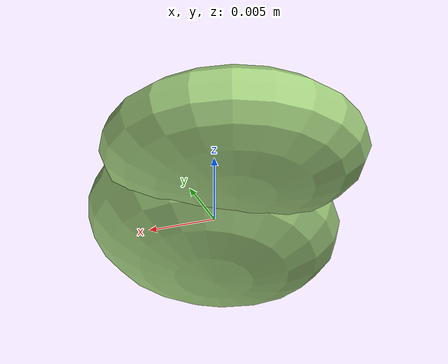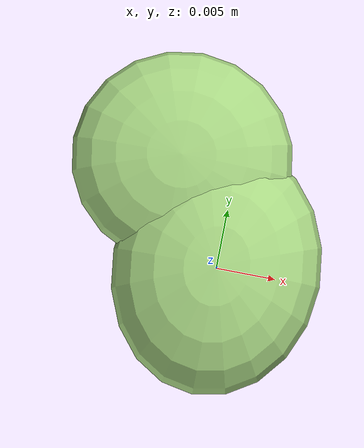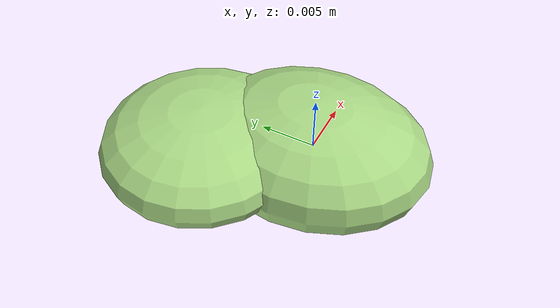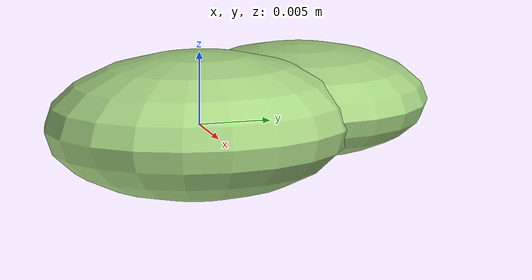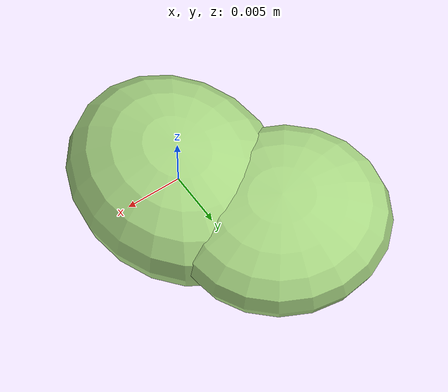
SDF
<?xml version="1.0" ?>
<!-- |    This document was autogenerated by xmacro from data/veggie_template/veggie_base.sdf.xacro  | -->
<!-- |    EDITING THIS FILE BY HAND IS NOT RECOMMENDED                                               | -->
<sdf version="1.8">
	<!-- Parameters -->
	<!-- Base -->
	<!-- Joint 0 -->
	<!-- Link 1 -->
	<!-- Joint 1 -->
	<!-- Link 2 -->
	<!-- Primitives -->
	<!-- All dimensions are half -->
	<!-- Object -->
	<model name="veggie">
		<!-- link0 -->
		<link name="link0">
			<inertial>
				<mass>0.0019788272473992173</mass>
				<inertia>
					<ixx>5.545247827666649e-08</ixx>
					<ixy>0</ixy>
					<ixz>0</ixz>
					<iyy>4.060040996791062e-08</iyy>
					<iyz>0</iyz>
					<izz>7.628662188570018e-08</izz>
				</inertia>
			</inertial>
			<visual name="link0_visual">
				<pose>0 0 0 0 0 0</pose>
				<geometry>
					<ellipsoid>
						<radii>0.008809929171166006 0.010730438131095704 0.004997219030023831</radii>
					</ellipsoid>
				</geometry>
				<material>
					<ambient>0.659 0.839 0.514 1</ambient>
					<diffuse>0.659 0.839 0.514 1</diffuse>
					<specular>0 0 0 0</specular>
					<emissive>0 0 0 1</emissive>
				</material>
			</visual>
			<collision name="link0_collision">
				<pose>0 0 0 0 0 0 </pose>
				<geometry>
					<ellipsoid>
						<radii>0.008809929171166006 0.010730438131095704 0.004997219030023831</radii>
					</ellipsoid>
				</geometry>
			</collision>
		</link>
		<!-- link1 -->
		<joint name="joint0" type="fixed">
			<pose relative_to="link0">-0.004582306391896971 0.008522611251491645 0.0005345228544461323 0.0 0.0 0.0</pose>
			<parent>link0</parent>
			<child>link1</child>
		</joint>
		<link name="link1">
			<pose relative_to="joint0">0 0 0 0 0 0</pose>
			<inertial>
				<mass>0.0013669631361286436</mass>
				<inertia>
					<ixx>2.657215039831521e-08</ixx>
					<ixy>0</ixy>
					<ixz>0</ixz>
					<iyy>2.7934243464274235e-08</iyy>
					<iyz>0</iyz>
					<izz>4.642018113013308e-08</izz>
				</inertia>
			</inertial>
			<visual name="link1_visual">
				<pose>0 0 0 0 0 0</pose>
				<geometry>
					<ellipsoid>
						<radii>0.009348135762616368 0.009077745078043386 0.003845600665093587</radii>
					</ellipsoid>
				</geometry>
				<material>
					<ambient>0.659 0.839 0.514 1</ambient>
					<diffuse>0.659 0.839 0.514 1</diffuse>
					<specular>0 0 0 0</specular>
					<emissive>0 0 0 1</emissive>
				</material>
			</visual>
			<collision name="link1_collision">
				<pose>0 0 0 0 0 0 </pose>
				<geometry>
					<ellipsoid>
						<radii>0.009348135762616368 0.009077745078043386 0.003845600665093587</radii>
					</ellipsoid>
				</geometry>
			</collision>
		</link>
		<!-- link2 -->
	</model>
</sdf>
